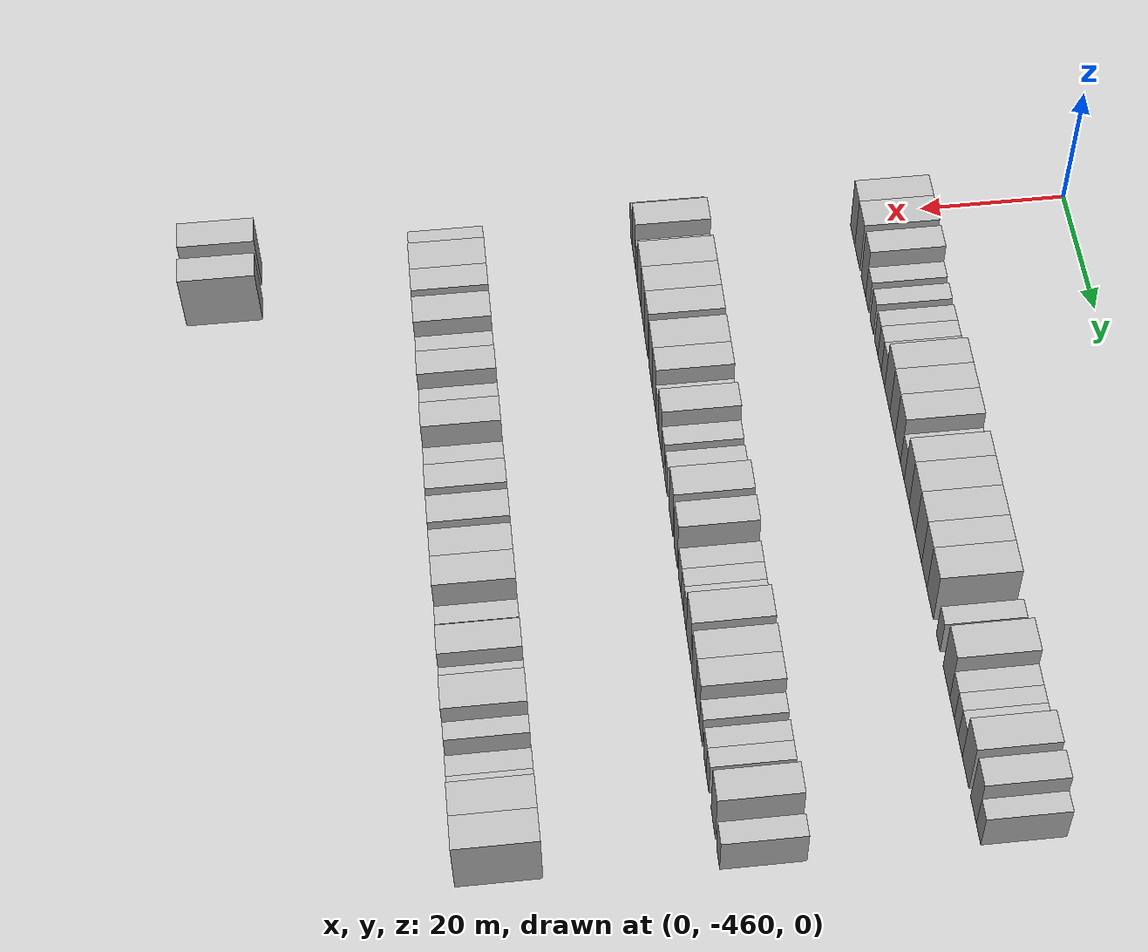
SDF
<sdf version="1.6">
 <world name="default">
  <model name="building_1">
   <static>1</static>
   <pose>25.0000 -456.1412 0 0.000000 0.000000 0.000000</pose>
   <link name="link">
    <pose>0 0 4.50 0 0 0</pose>
    <collision name="collision"><geometry><box><size>10.0000 3.7175 9.0000</size></box></geometry></collision>
    <visual name="visual">
     <cast_shadows>0</cast_shadows>
     <geometry><box><size>10.0000 3.7175 9.0000</size></box></geometry>
     <material>
      <script>
       <uri>model://HANNAS_wall/materials/scripts</uri>
       <uri>model://HANNAS_wall/materials/textures</uri>
       <name>vrc/HANNAS_wall</name>
      </script>
     </material>
    </visual>
   </link>
  </model>
  <model name="building_2">
   <static>1</static>
   <pose>25.0000 -452.1056 0 0.000000 0.000000 0.000000</pose>
   <link name="link">
    <pose>0 0 4.50 0 0 0</pose>
    <collision name="collision"><geometry><box><size>10.0000 4.3537 9.0000</size></box></geometry></collision>
    <visual name="visual">
     <cast_shadows>0</cast_shadows>
     <geometry><box><size>10.0000 4.3537 9.0000</size></box></geometry>
     <material>
      <script>
       <uri>model://HANNAS_wall/materials/scripts</uri>
       <uri>model://HANNAS_wall/materials/textures</uri>
       <name>vrc/HANNAS_wall</name>
      </script>
     </material>
    </visual>
   </link>
  </model>
  <model name="building_3">
   <static>1</static>
   <pose>25.0000 -447.1029 0 0.000000 0.000000 0.000000</pose>
   <link name="link">
    <pose>0 0 4.50 0 0 0</pose>
    <collision name="collision"><geometry><box><size>10.0000 3.6517 9.0000</size></box></geometry></collision>
    <visual name="visual">
     <cast_shadows>0</cast_shadows>
     <geometry><box><size>10.0000 3.6517 9.0000</size></box></geometry>
     <material>
      <script>
       <uri>model://HANNAS_wall/materials/scripts</uri>
       <uri>model://HANNAS_wall/materials/textures</uri>
       <name>vrc/HANNAS_wall</name>
      </script>
     </material>
    </visual>
   </link>
  </model>
  <model name="building_4">
   <static>1</static>
   <pose>25.0000 -443.9149 0 0.000000 0.000000 0.000000</pose>
   <link name="link">
    <pose>0 0 3.00 0 0 0</pose>
    <collision name="collision"><geometry><box><size>10.0000 2.7243 6.0000</size></box></geometry></collision>
    <visual name="visual">
     <cast_shadows>0</cast_shadows>
     <geometry><box><size>10.0000 2.7243 6.0000</size></box></geometry>
     <material>
      <script>
       <uri>model://HANNAS_wall/materials/scripts</uri>
       <uri>model://HANNAS_wall/materials/textures</uri>
       <name>vrc/HANNAS_wall</name>
      </script>
     </material>
    </visual>
   </link>
  </model>
  <model name="building_5">
   <static>1</static>
   <pose>25.0000 -440.1953 0 0.000000 0.000000 0.000000</pose>
   <link name="link">
    <pose>0 0 3.00 0 0 0</pose>
    <collision name="collision"><geometry><box><size>10.0000 2.7148 6.0000</size></box></geometry></collision>
    <visual name="visual">
     <cast_shadows>0</cast_shadows>
     <geometry><box><size>10.0000 2.7148 6.0000</size></box></geometry>
     <material>
      <script>
       <uri>model://HANNAS_wall/materials/scripts</uri>
       <uri>model://HANNAS_wall/materials/textures</uri>
       <name>vrc/HANNAS_wall</name>
      </script>
     </material>
    </visual>
   </link>
  </model>
  <model name="building_6">
   <static>1</static>
   <pose>25.0000 -436.5487 0 0.000000 0.000000 0.000000</pose>
   <link name="link">
    <pose>0 0 3.00 0 0 0</pose>
    <collision name="collision"><geometry><box><size>10.0000 2.5785 6.0000</size></box></geometry></collision>
    <visual name="visual">
     <cast_shadows>0</cast_shadows>
     <geometry><box><size>10.0000 2.5785 6.0000</size></box></geometry>
     <material>
      <script>
       <uri>model://HANNAS_wall/materials/scripts</uri>
       <uri>model://HANNAS_wall/materials/textures</uri>
       <name>vrc/HANNAS_wall</name>
      </script>
     </material>
    </visual>
   </link>
  </model>
  <model name="building_7">
   <static>1</static>
   <pose>25.0000 -433.9206 0 0.000000 0.000000 0.000000</pose>
   <link name="link">
    <pose>0 0 3.00 0 0 0</pose>
    <collision name="collision"><geometry><box><size>10.0000 2.6775 6.0000</size></box></geometry></collision>
    <visual name="visual">
     <cast_shadows>0</cast_shadows>
     <geometry><box><size>10.0000 2.6775 6.0000</size></box></geometry>
     <material>
      <script>
       <uri>model://HANNAS_wall/materials/scripts</uri>
       <uri>model://HANNAS_wall/materials/textures</uri>
       <name>vrc/HANNAS_wall</name>
      </script>
     </material>
    </visual>
   </link>
  </model>
  <model name="building_8">
   <static>1</static>
   <pose>25.0000 -431.2459 0 0.000000 0.000000 0.000000</pose>
   <link name="link">
    <pose>0 0 3.00 0 0 0</pose>
    <collision name="collision"><geometry><box><size>10.0000 2.6720 6.0000</size></box></geometry></collision>
    <visual name="visual">
     <cast_shadows>0</cast_shadows>
     <geometry><box><size>10.0000 2.6720 6.0000</size></box></geometry>
     <material>
      <script>
       <uri>model://HANNAS_wall/materials/scripts</uri>
       <uri>model://HANNAS_wall/materials/textures</uri>
       <name>vrc/HANNAS_wall</name>
      </script>
     </material>
    </visual>
   </link>
  </model>
  <model name="building_9">
   <static>1</static>
   <pose>25.0000 -427.8810 0 0.000000 0.000000 0.000000</pose>
   <link name="link">
    <pose>0 0 4.50 0 0 0</pose>
    <collision name="collision"><geometry><box><size>10.0000 4.0577 9.0000</size></box></geometry></collision>
    <visual name="visual">
     <cast_shadows>0</cast_shadows>
     <geometry><box><size>10.0000 4.0577 9.0000</size></box></geometry>
     <material>
      <script>
       <uri>model://HANNAS_wall/materials/scripts</uri>
       <uri>model://HANNAS_wall/materials/textures</uri>
       <name>vrc/HANNAS_wall</name>
      </script>
     </material>
    </visual>
   </link>
  </model>
  <model name="building_10">
   <static>1</static>
   <pose>25.0000 -423.8278 0 0.000000 0.000000 0.000000</pose>
   <link name="link">
    <pose>0 0 4.50 0 0 0</pose>
    <collision name="collision"><geometry><box><size>10.0000 4.0487 9.0000</size></box></geometry></collision>
    <visual name="visual">
     <cast_shadows>0</cast_shadows>
     <geometry><box><size>10.0000 4.0487 9.0000</size></box></geometry>
     <material>
      <script>
       <uri>model://HANNAS_wall/materials/scripts</uri>
       <uri>model://HANNAS_wall/materials/textures</uri>
       <name>vrc/HANNAS_wall</name>
      </script>
     </material>
    </visual>
   </link>
  </model>
  <model name="building_11">
   <static>1</static>
   <pose>25.0000 -419.7677 0 0.000000 0.000000 0.000000</pose>
   <link name="link">
    <pose>0 0 4.50 0 0 0</pose>
    <collision name="collision"><geometry><box><size>10.0000 4.0715 9.0000</size></box></geometry></collision>
    <visual name="visual">
     <cast_shadows>0</cast_shadows>
     <geometry><box><size>10.0000 4.0715 9.0000</size></box></geometry>
     <material>
      <script>
       <uri>model://HANNAS_wall/materials/scripts</uri>
       <uri>model://HANNAS_wall/materials/textures</uri>
       <name>vrc/HANNAS_wall</name>
      </script>
     </material>
    </visual>
   </link>
  </model>
  <model name="building_12">
   <static>1</static>
   <pose>25.0000 -416.3413 0 0.000000 0.000000 0.000000</pose>
   <link name="link">
    <pose>0 0 3.00 0 0 0</pose>
    <collision name="collision"><geometry><box><size>10.0000 2.7813 6.0000</size></box></geometry></collision>
    <visual name="visual">
     <cast_shadows>0</cast_shadows>
     <geometry><box><size>10.0000 2.7813 6.0000</size></box></geometry>
     <material>
      <script>
       <uri>model://HANNAS_wall/materials/scripts</uri>
       <uri>model://HANNAS_wall/materials/textures</uri>
       <name>vrc/HANNAS_wall</name>
      </script>
     </material>
    </visual>
   </link>
  </model>
  <model name="building_13">
   <static>1</static>
   <pose>25.0000 -413.0991 0 0.000000 0.000000 0.000000</pose>
   <link name="link">
    <pose>0 0 4.50 0 0 0</pose>
    <collision name="collision"><geometry><box><size>10.0000 3.7031 9.0000</size></box></geometry></collision>
    <visual name="visual">
     <cast_shadows>0</cast_shadows>
     <geometry><box><size>10.0000 3.7031 9.0000</size></box></geometry>
     <material>
      <script>
       <uri>model://HANNAS_wall/materials/scripts</uri>
       <uri>model://HANNAS_wall/materials/textures</uri>
       <name>vrc/HANNAS_wall</name>
      </script>
     </material>
    </visual>
   </link>
  </model>
  <model name="building_14">
   <static>1</static>
   <pose>25.0000 -409.0088 0 0.000000 0.000000 0.000000</pose>
   <link name="link">
    <pose>0 0 4.50 0 0 0</pose>
    <collision name="collision"><geometry><box><size>10.0000 4.4775 9.0000</size></box></geometry></collision>
    <visual name="visual">
     <cast_shadows>0</cast_shadows>
     <geometry><box><size>10.0000 4.4775 9.0000</size></box></geometry>
     <material>
      <script>
       <uri>model://HANNAS_wall/materials/scripts</uri>
       <uri>model://HANNAS_wall/materials/textures</uri>
       <name>vrc/HANNAS_wall</name>
      </script>
     </material>
    </visual>
   </link>
  </model>
  <model name="building_15">
   <static>1</static>
   <pose>25.0000 -404.5350 0 0.000000 0.000000 0.000000</pose>
   <link name="link">
    <pose>0 0 4.50 0 0 0</pose>
    <collision name="collision"><geometry><box><size>10.0000 4.4703 9.0000</size></box></geometry></collision>
    <visual name="visual">
     <cast_shadows>0</cast_shadows>
     <geometry><box><size>10.0000 4.4703 9.0000</size></box></geometry>
     <material>
      <script>
       <uri>model://HANNAS_wall/materials/scripts</uri>
       <uri>model://HANNAS_wall/materials/textures</uri>
       <name>vrc/HANNAS_wall</name>
      </script>
     </material>
    </visual>
   </link>
  </model>
  <model name="building_16">
   <static>1</static>
   <pose>25.0000 -400.4179 0 0.000000 0.000000 0.000000</pose>
   <link name="link">
    <pose>0 0 4.50 0 0 0</pose>
    <collision name="collision"><geometry><box><size>10.0000 3.7637 9.0000</size></box></geometry></collision>
    <visual name="visual">
     <cast_shadows>0</cast_shadows>
     <geometry><box><size>10.0000 3.7637 9.0000</size></box></geometry>
     <material>
      <script>
       <uri>model://HANNAS_wall/materials/scripts</uri>
       <uri>model://HANNAS_wall/materials/textures</uri>
       <name>vrc/HANNAS_wall</name>
      </script>
     </material>
    </visual>
   </link>
  </model>
  <model name="building_17">
   <static>1</static>
   <pose>25.0000 -396.3041 0 0.000000 0.000000 0.000000</pose>
   <link name="link">
    <pose>0 0 4.50 0 0 0</pose>
    <collision name="collision"><geometry><box><size>10.0000 4.4640 9.0000</size></box></geometry></collision>
    <visual name="visual">
     <cast_shadows>0</cast_shadows>
     <geometry><box><size>10.0000 4.4640 9.0000</size></box></geometry>
     <material>
      <script>
       <uri>model://HANNAS_wall/materials/scripts</uri>
       <uri>model://HANNAS_wall/materials/textures</uri>
       <name>vrc/HANNAS_wall</name>
      </script>
     </material>
    </visual>
   </link>
  </model>
  <model name="building_18">
   <static>1</static>
   <pose>25.0000 -390.7837 0 0.000000 0.000000 0.000000</pose>
   <link name="link">
    <pose>0 0 3.00 0 0 0</pose>
    <collision name="collision"><geometry><box><size>10.0000 2.5768 6.0000</size></box></geometry></collision>
    <visual name="visual">
     <cast_shadows>0</cast_shadows>
     <geometry><box><size>10.0000 2.5768 6.0000</size></box></geometry>
     <material>
      <script>
       <uri>model://HANNAS_wall/materials/scripts</uri>
       <uri>model://HANNAS_wall/materials/textures</uri>
       <name>vrc/HANNAS_wall</name>
      </script>
     </material>
    </visual>
   </link>
  </model>
  <model name="building_19">
   <static>1</static>
   <pose>25.0000 -385.2495 0 0.000000 0.000000 0.000000</pose>
   <link name="link">
    <pose>0 0 4.50 0 0 0</pose>
    <collision name="collision"><geometry><box><size>10.0000 4.4918 9.0000</size></box></geometry></collision>
    <visual name="visual">
     <cast_shadows>0</cast_shadows>
     <geometry><box><size>10.0000 4.4918 9.0000</size></box></geometry>
     <material>
      <script>
       <uri>model://HANNAS_wall/materials/scripts</uri>
       <uri>model://HANNAS_wall/materials/textures</uri>
       <name>vrc/HANNAS_wall</name>
      </script>
     </material>
    </visual>
   </link>
  </model>
  <model name="building_20">
   <static>1</static>
   <pose>25.0000 -381.5577 0 0.000000 0.000000 0.000000</pose>
   <link name="link">
    <pose>0 0 3.00 0 0 0</pose>
    <collision name="collision"><geometry><box><size>10.0000 2.8917 6.0000</size></box></geometry></collision>
    <visual name="visual">
     <cast_shadows>0</cast_shadows>
     <geometry><box><size>10.0000 2.8917 6.0000</size></box></geometry>
     <material>
      <script>
       <uri>model://HANNAS_wall/materials/scripts</uri>
       <uri>model://HANNAS_wall/materials/textures</uri>
       <name>vrc/HANNAS_wall</name>
      </script>
     </material>
    </visual>
   </link>
  </model>
  <model name="building_21">
   <static>1</static>
   <pose>25.0000 -378.9097 0 0.000000 0.000000 0.000000</pose>
   <link name="link">
    <pose>0 0 3.00 0 0 0</pose>
    <collision name="collision"><geometry><box><size>10.0000 2.4043 6.0000</size></box></geometry></collision>
    <visual name="visual">
     <cast_shadows>0</cast_shadows>
     <geometry><box><size>10.0000 2.4043 6.0000</size></box></geometry>
     <material>
      <script>
       <uri>model://HANNAS_wall/materials/scripts</uri>
       <uri>model://HANNAS_wall/materials/textures</uri>
       <name>vrc/HANNAS_wall</name>
      </script>
     </material>
    </visual>
   </link>
  </model>
  <model name="building_22">
   <static>1</static>
   <pose>25.0000 -376.3395 0 0.000000 0.000000 0.000000</pose>
   <link name="link">
    <pose>0 0 3.00 0 0 0</pose>
    <collision name="collision"><geometry><box><size>10.0000 2.7362 6.0000</size></box></geometry></collision>
    <visual name="visual">
     <cast_shadows>0</cast_shadows>
     <geometry><box><size>10.0000 2.7362 6.0000</size></box></geometry>
     <material>
      <script>
       <uri>model://HANNAS_wall/materials/scripts</uri>
       <uri>model://HANNAS_wall/materials/textures</uri>
       <name>vrc/HANNAS_wall</name>
      </script>
     </material>
    </visual>
   </link>
  </model>
  <model name="building_23">
   <static>1</static>
   <pose>25.0000 -372.8652 0 0.000000 0.000000 0.000000</pose>
   <link name="link">
    <pose>0 0 4.50 0 0 0</pose>
    <collision name="collision"><geometry><box><size>10.0000 4.2125 9.0000</size></box></geometry></collision>
    <visual name="visual">
     <cast_shadows>0</cast_shadows>
     <geometry><box><size>10.0000 4.2125 9.0000</size></box></geometry>
     <material>
      <script>
       <uri>model://HANNAS_wall/materials/scripts</uri>
       <uri>model://HANNAS_wall/materials/textures</uri>
       <name>vrc/HANNAS_wall</name>
      </script>
     </material>
    </visual>
   </link>
  </model>
  <model name="building_24">
   <static>1</static>
   <pose>25.0000 -367.9581 0 0.000000 0.000000 0.000000</pose>
   <link name="link">
    <pose>0 0 4.50 0 0 0</pose>
    <collision name="collision"><geometry><box><size>10.0000 3.6017 9.0000</size></box></geometry></collision>
    <visual name="visual">
     <cast_shadows>0</cast_shadows>
     <geometry><box><size>10.0000 3.6017 9.0000</size></box></geometry>
     <material>
      <script>
       <uri>model://HANNAS_wall/materials/scripts</uri>
       <uri>model://HANNAS_wall/materials/textures</uri>
       <name>vrc/HANNAS_wall</name>
      </script>
     </material>
    </visual>
   </link>
  </model>
  <model name="building_25">
   <static>1</static>
   <pose>25.0000 -364.8234 0 0.000000 0.000000 0.000000</pose>
   <link name="link">
    <pose>0 0 3.00 0 0 0</pose>
    <collision name="collision"><geometry><box><size>10.0000 2.6679 6.0000</size></box></geometry></collision>
    <visual name="visual">
     <cast_shadows>0</cast_shadows>
     <geometry><box><size>10.0000 2.6679 6.0000</size></box></geometry>
     <material>
      <script>
       <uri>model://HANNAS_wall/materials/scripts</uri>
       <uri>model://HANNAS_wall/materials/textures</uri>
       <name>vrc/HANNAS_wall</name>
      </script>
     </material>
    </visual>
   </link>
  </model>
  <model name="building_231">
   <static>1</static>
   <pose>55.0000 -458.5905 0 0.000000 0.000000 0.000000</pose>
   <link name="link">
    <pose>0 0 3.00 0 0 0</pose>
    <collision name="collision"><geometry><box><size>10.0000 2.8190 6.0000</size></box></geometry></collision>
    <visual name="visual">
     <cast_shadows>0</cast_shadows>
     <geometry><box><size>10.0000 2.8190 6.0000</size></box></geometry>
     <material>
      <script>
       <uri>model://HANNAS_wall/materials/scripts</uri>
       <uri>model://HANNAS_wall/materials/textures</uri>
       <name>vrc/HANNAS_wall</name>
      </script>
     </material>
    </visual>
   </link>
  </model>
  <model name="building_232">
   <static>1</static>
   <pose>55.0000 -455.2562 0 0.000000 0.000000 0.000000</pose>
   <link name="link">
    <pose>0 0 4.50 0 0 0</pose>
    <collision name="collision"><geometry><box><size>10.0000 3.8497 9.0000</size></box></geometry></collision>
    <visual name="visual">
     <cast_shadows>0</cast_shadows>
     <geometry><box><size>10.0000 3.8497 9.0000</size></box></geometry>
     <material>
      <script>
       <uri>model://HANNAS_wall/materials/scripts</uri>
       <uri>model://HANNAS_wall/materials/textures</uri>
       <name>vrc/HANNAS_wall</name>
      </script>
     </material>
    </visual>
   </link>
  </model>
  <model name="building_233">
   <static>1</static>
   <pose>55.0000 -451.8978 0 0.000000 0.000000 0.000000</pose>
   <link name="link">
    <pose>0 0 3.00 0 0 0</pose>
    <collision name="collision"><geometry><box><size>10.0000 2.8672 6.0000</size></box></geometry></collision>
    <visual name="visual">
     <cast_shadows>0</cast_shadows>
     <geometry><box><size>10.0000 2.8672 6.0000</size></box></geometry>
     <material>
      <script>
       <uri>model://HANNAS_wall/materials/scripts</uri>
       <uri>model://HANNAS_wall/materials/textures</uri>
       <name>vrc/HANNAS_wall</name>
      </script>
     </material>
    </visual>
   </link>
  </model>
  <model name="building_234">
   <static>1</static>
   <pose>55.0000 -448.2788 0 0.000000 0.000000 0.000000</pose>
   <link name="link">
    <pose>0 0 4.50 0 0 0</pose>
    <collision name="collision"><geometry><box><size>10.0000 4.3707 9.0000</size></box></geometry></collision>
    <visual name="visual">
     <cast_shadows>0</cast_shadows>
     <geometry><box><size>10.0000 4.3707 9.0000</size></box></geometry>
     <material>
      <script>
       <uri>model://HANNAS_wall/materials/scripts</uri>
       <uri>model://HANNAS_wall/materials/textures</uri>
       <name>vrc/HANNAS_wall</name>
      </script>
     </material>
    </visual>
   </link>
  </model>
  <model name="building_235">
   <static>1</static>
   <pose>55.0000 -444.0166 0 0.000000 0.000000 0.000000</pose>
   <link name="link">
    <pose>0 0 4.50 0 0 0</pose>
    <collision name="collision"><geometry><box><size>10.0000 4.1537 9.0000</size></box></geometry></collision>
    <visual name="visual">
     <cast_shadows>0</cast_shadows>
     <geometry><box><size>10.0000 4.1537 9.0000</size></box></geometry>
     <material>
      <script>
       <uri>model://HANNAS_wall/materials/scripts</uri>
       <uri>model://HANNAS_wall/materials/textures</uri>
       <name>vrc/HANNAS_wall</name>
      </script>
     </material>
    </visual>
   </link>
  </model>
  <model name="building_236">
   <static>1</static>
   <pose>55.0000 -439.9630 0 0.000000 0.000000 0.000000</pose>
   <link name="link">
    <pose>0 0 4.50 0 0 0</pose>
    <collision name="collision"><geometry><box><size>10.0000 3.9536 9.0000</size></box></geometry></collision>
    <visual name="visual">
     <cast_shadows>0</cast_shadows>
     <geometry><box><size>10.0000 3.9536 9.0000</size></box></geometry>
     <material>
      <script>
       <uri>model://HANNAS_wall/materials/scripts</uri>
       <uri>model://HANNAS_wall/materials/textures</uri>
       <name>vrc/HANNAS_wall</name>
      </script>
     </material>
    </visual>
   </link>
  </model>
  <model name="building_237">
   <static>1</static>
   <pose>55.0000 -434.7425 0 0.000000 0.000000 0.000000</pose>
   <link name="link">
    <pose>0 0 4.50 0 0 0</pose>
    <collision name="collision"><geometry><box><size>10.0000 4.4873 9.0000</size></box></geometry></collision>
    <visual name="visual">
     <cast_shadows>0</cast_shadows>
     <geometry><box><size>10.0000 4.4873 9.0000</size></box></geometry>
     <material>
      <script>
       <uri>model://HANNAS_wall/materials/scripts</uri>
       <uri>model://HANNAS_wall/materials/textures</uri>
       <name>vrc/HANNAS_wall</name>
      </script>
     </material>
    </visual>
   </link>
  </model>
  <model name="building_238">
   <static>1</static>
   <pose>55.0000 -430.6491 0 0.000000 0.000000 0.000000</pose>
   <link name="link">
    <pose>0 0 4.50 0 0 0</pose>
    <collision name="collision"><geometry><box><size>10.0000 3.6995 9.0000</size></box></geometry></collision>
    <visual name="visual">
     <cast_shadows>0</cast_shadows>
     <geometry><box><size>10.0000 3.6995 9.0000</size></box></geometry>
     <material>
      <script>
       <uri>model://HANNAS_wall/materials/scripts</uri>
       <uri>model://HANNAS_wall/materials/textures</uri>
       <name>vrc/HANNAS_wall</name>
      </script>
     </material>
    </visual>
   </link>
  </model>
  <model name="building_239">
   <static>1</static>
   <pose>55.0000 -427.3401 0 0.000000 0.000000 0.000000</pose>
   <link name="link">
    <pose>0 0 3.00 0 0 0</pose>
    <collision name="collision"><geometry><box><size>10.0000 2.9185 6.0000</size></box></geometry></collision>
    <visual name="visual">
     <cast_shadows>0</cast_shadows>
     <geometry><box><size>10.0000 2.9185 6.0000</size></box></geometry>
     <material>
      <script>
       <uri>model://HANNAS_wall/materials/scripts</uri>
       <uri>model://HANNAS_wall/materials/textures</uri>
       <name>vrc/HANNAS_wall</name>
      </script>
     </material>
    </visual>
   </link>
  </model>
  <model name="building_240">
   <static>1</static>
   <pose>55.0000 -424.0318 0 0.000000 0.000000 0.000000</pose>
   <link name="link">
    <pose>0 0 4.50 0 0 0</pose>
    <collision name="collision"><geometry><box><size>10.0000 3.6981 9.0000</size></box></geometry></collision>
    <visual name="visual">
     <cast_shadows>0</cast_shadows>
     <geometry><box><size>10.0000 3.6981 9.0000</size></box></geometry>
     <material>
      <script>
       <uri>model://HANNAS_wall/materials/scripts</uri>
       <uri>model://HANNAS_wall/materials/textures</uri>
       <name>vrc/HANNAS_wall</name>
      </script>
     </material>
    </visual>
   </link>
  </model>
  <model name="building_241">
   <static>1</static>
   <pose>55.0000 -420.7394 0 0.000000 0.000000 0.000000</pose>
   <link name="link">
    <pose>0 0 3.00 0 0 0</pose>
    <collision name="collision"><geometry><box><size>10.0000 2.8867 6.0000</size></box></geometry></collision>
    <visual name="visual">
     <cast_shadows>0</cast_shadows>
     <geometry><box><size>10.0000 2.8867 6.0000</size></box></geometry>
     <material>
      <script>
       <uri>model://HANNAS_wall/materials/scripts</uri>
       <uri>model://HANNAS_wall/materials/textures</uri>
       <name>vrc/HANNAS_wall</name>
      </script>
     </material>
    </visual>
   </link>
  </model>
  <model name="building_242">
   <static>1</static>
   <pose>55.0000 -417.0213 0 0.000000 0.000000 0.000000</pose>
   <link name="link">
    <pose>0 0 3.00 0 0 0</pose>
    <collision name="collision"><geometry><box><size>10.0000 2.5495 6.0000</size></box></geometry></collision>
    <visual name="visual">
     <cast_shadows>0</cast_shadows>
     <geometry><box><size>10.0000 2.5495 6.0000</size></box></geometry>
     <material>
      <script>
       <uri>model://HANNAS_wall/materials/scripts</uri>
       <uri>model://HANNAS_wall/materials/textures</uri>
       <name>vrc/HANNAS_wall</name>
      </script>
     </material>
    </visual>
   </link>
  </model>
  <model name="building_243">
   <static>1</static>
   <pose>55.0000 -411.6289 0 0.000000 0.000000 0.000000</pose>
   <link name="link">
    <pose>0 0 4.50 0 0 0</pose>
    <collision name="collision"><geometry><box><size>10.0000 4.2352 9.0000</size></box></geometry></collision>
    <visual name="visual">
     <cast_shadows>0</cast_shadows>
     <geometry><box><size>10.0000 4.2352 9.0000</size></box></geometry>
     <material>
      <script>
       <uri>model://HANNAS_wall/materials/scripts</uri>
       <uri>model://HANNAS_wall/materials/textures</uri>
       <name>vrc/HANNAS_wall</name>
      </script>
     </material>
    </visual>
   </link>
  </model>
  <model name="building_244">
   <static>1</static>
   <pose>55.0000 -406.6191 0 0.000000 0.000000 0.000000</pose>
   <link name="link">
    <pose>0 0 4.50 0 0 0</pose>
    <collision name="collision"><geometry><box><size>10.0000 3.7844 9.0000</size></box></geometry></collision>
    <visual name="visual">
     <cast_shadows>0</cast_shadows>
     <geometry><box><size>10.0000 3.7844 9.0000</size></box></geometry>
     <material>
      <script>
       <uri>model://HANNAS_wall/materials/scripts</uri>
       <uri>model://HANNAS_wall/materials/textures</uri>
       <name>vrc/HANNAS_wall</name>
      </script>
     </material>
    </visual>
   </link>
  </model>
  <model name="building_245">
   <static>1</static>
   <pose>55.0000 -402.2301 0 0.000000 0.000000 0.000000</pose>
   <link name="link">
    <pose>0 0 3.00 0 0 0</pose>
    <collision name="collision"><geometry><box><size>10.0000 2.9936 6.0000</size></box></geometry></collision>
    <visual name="visual">
     <cast_shadows>0</cast_shadows>
     <geometry><box><size>10.0000 2.9936 6.0000</size></box></geometry>
     <material>
      <script>
       <uri>model://HANNAS_wall/materials/scripts</uri>
       <uri>model://HANNAS_wall/materials/textures</uri>
       <name>vrc/HANNAS_wall</name>
      </script>
     </material>
    </visual>
   </link>
  </model>
  <model name="building_246">
   <static>1</static>
   <pose>55.0000 -399.4546 0 0.000000 0.000000 0.000000</pose>
   <link name="link">
    <pose>0 0 3.00 0 0 0</pose>
    <collision name="collision"><geometry><box><size>10.0000 2.5574 6.0000</size></box></geometry></collision>
    <visual name="visual">
     <cast_shadows>0</cast_shadows>
     <geometry><box><size>10.0000 2.5574 6.0000</size></box></geometry>
     <material>
      <script>
       <uri>model://HANNAS_wall/materials/scripts</uri>
       <uri>model://HANNAS_wall/materials/textures</uri>
       <name>vrc/HANNAS_wall</name>
      </script>
     </material>
    </visual>
   </link>
  </model>
  <model name="building_247">
   <static>1</static>
   <pose>55.0000 -396.7835 0 0.000000 0.000000 0.000000</pose>
   <link name="link">
    <pose>0 0 3.00 0 0 0</pose>
    <collision name="collision"><geometry><box><size>10.0000 2.7848 6.0000</size></box></geometry></collision>
    <visual name="visual">
     <cast_shadows>0</cast_shadows>
     <geometry><box><size>10.0000 2.7848 6.0000</size></box></geometry>
     <material>
      <script>
       <uri>model://HANNAS_wall/materials/scripts</uri>
       <uri>model://HANNAS_wall/materials/textures</uri>
       <name>vrc/HANNAS_wall</name>
      </script>
     </material>
    </visual>
   </link>
  </model>
  <model name="building_248">
   <static>1</static>
   <pose>55.0000 -393.1993 0 0.000000 0.000000 0.000000</pose>
   <link name="link">
    <pose>0 0 4.50 0 0 0</pose>
    <collision name="collision"><geometry><box><size>10.0000 4.3835 9.0000</size></box></geometry></collision>
    <visual name="visual">
     <cast_shadows>0</cast_shadows>
     <geometry><box><size>10.0000 4.3835 9.0000</size></box></geometry>
     <material>
      <script>
       <uri>model://HANNAS_wall/materials/scripts</uri>
       <uri>model://HANNAS_wall/materials/textures</uri>
       <name>vrc/HANNAS_wall</name>
      </script>
     </material>
    </visual>
   </link>
  </model>
  <model name="building_249">
   <static>1</static>
   <pose>55.0000 -388.0685 0 0.000000 0.000000 0.000000</pose>
   <link name="link">
    <pose>0 0 4.50 0 0 0</pose>
    <collision name="collision"><geometry><box><size>10.0000 3.8781 9.0000</size></box></geometry></collision>
    <visual name="visual">
     <cast_shadows>0</cast_shadows>
     <geometry><box><size>10.0000 3.8781 9.0000</size></box></geometry>
     <material>
      <script>
       <uri>model://HANNAS_wall/materials/scripts</uri>
       <uri>model://HANNAS_wall/materials/textures</uri>
       <name>vrc/HANNAS_wall</name>
      </script>
     </material>
    </visual>
   </link>
  </model>
  <model name="building_250">
   <static>1</static>
   <pose>55.0000 -384.2683 0 0.000000 0.000000 0.000000</pose>
   <link name="link">
    <pose>0 0 4.50 0 0 0</pose>
    <collision name="collision"><geometry><box><size>10.0000 3.7224 9.0000</size></box></geometry></collision>
    <visual name="visual">
     <cast_shadows>0</cast_shadows>
     <geometry><box><size>10.0000 3.7224 9.0000</size></box></geometry>
     <material>
      <script>
       <uri>model://HANNAS_wall/materials/scripts</uri>
       <uri>model://HANNAS_wall/materials/textures</uri>
       <name>vrc/HANNAS_wall</name>
      </script>
     </material>
    </visual>
   </link>
  </model>
  <model name="building_251">
   <static>1</static>
   <pose>55.0000 -381.0393 0 0.000000 0.000000 0.000000</pose>
   <link name="link">
    <pose>0 0 3.00 0 0 0</pose>
    <collision name="collision"><geometry><box><size>10.0000 2.7356 6.0000</size></box></geometry></collision>
    <visual name="visual">
     <cast_shadows>0</cast_shadows>
     <geometry><box><size>10.0000 2.7356 6.0000</size></box></geometry>
     <material>
      <script>
       <uri>model://HANNAS_wall/materials/scripts</uri>
       <uri>model://HANNAS_wall/materials/textures</uri>
       <name>vrc/HANNAS_wall</name>
      </script>
     </material>
    </visual>
   </link>
  </model>
  <model name="building_252">
   <static>1</static>
   <pose>55.0000 -377.3305 0 0.000000 0.000000 0.000000</pose>
   <link name="link">
    <pose>0 0 3.00 0 0 0</pose>
    <collision name="collision"><geometry><box><size>10.0000 2.6821 6.0000</size></box></geometry></collision>
    <visual name="visual">
     <cast_shadows>0</cast_shadows>
     <geometry><box><size>10.0000 2.6821 6.0000</size></box></geometry>
     <material>
      <script>
       <uri>model://HANNAS_wall/materials/scripts</uri>
       <uri>model://HANNAS_wall/materials/textures</uri>
       <name>vrc/HANNAS_wall</name>
      </script>
     </material>
    </visual>
   </link>
  </model>
  <model name="building_253">
   <static>1</static>
   <pose>55.0000 -374.7233 0 0.000000 0.000000 0.000000</pose>
   <link name="link">
    <pose>0 0 3.00 0 0 0</pose>
    <collision name="collision"><geometry><box><size>10.0000 2.5322 6.0000</size></box></geometry></collision>
    <visual name="visual">
     <cast_shadows>0</cast_shadows>
     <geometry><box><size>10.0000 2.5322 6.0000</size></box></geometry>
     <material>
      <script>
       <uri>model://HANNAS_wall/materials/scripts</uri>
       <uri>model://HANNAS_wall/materials/textures</uri>
       <name>vrc/HANNAS_wall</name>
      </script>
     </material>
    </visual>
   </link>
  </model>
  <model name="building_254">
   <static>1</static>
   <pose>55.0000 -369.4746 0 0.000000 0.000000 0.000000</pose>
   <link name="link">
    <pose>0 0 4.50 0 0 0</pose>
    <collision name="collision"><geometry><box><size>10.0000 3.9654 9.0000</size></box></geometry></collision>
    <visual name="visual">
     <cast_shadows>0</cast_shadows>
     <geometry><box><size>10.0000 3.9654 9.0000</size></box></geometry>
     <material>
      <script>
       <uri>model://HANNAS_wall/materials/scripts</uri>
       <uri>model://HANNAS_wall/materials/textures</uri>
       <name>vrc/HANNAS_wall</name>
      </script>
     </material>
    </visual>
   </link>
  </model>
  <model name="building_255">
   <static>1</static>
   <pose>55.0000 -365.0614 0 0.000000 0.000000 0.000000</pose>
   <link name="link">
    <pose>0 0 3.00 0 0 0</pose>
    <collision name="collision"><geometry><box><size>10.0000 2.8608 6.0000</size></box></geometry></collision>
    <visual name="visual">
     <cast_shadows>0</cast_shadows>
     <geometry><box><size>10.0000 2.8608 6.0000</size></box></geometry>
     <material>
      <script>
       <uri>model://HANNAS_wall/materials/scripts</uri>
       <uri>model://HANNAS_wall/materials/textures</uri>
       <name>vrc/HANNAS_wall</name>
      </script>
     </material>
    </visual>
   </link>
  </model>
  <model name="building_477">
   <static>1</static>
   <pose>85.0000 -456.6878 0 0.000000 0.000000 0.000000</pose>
   <link name="link">
    <pose>0 0 3.00 0 0 0</pose>
    <collision name="collision"><geometry><box><size>10.0000 2.6245 6.0000</size></box></geometry></collision>
    <visual name="visual">
     <cast_shadows>0</cast_shadows>
     <geometry><box><size>10.0000 2.6245 6.0000</size></box></geometry>
     <material>
      <script>
       <uri>model://HANNAS_wall/materials/scripts</uri>
       <uri>model://HANNAS_wall/materials/textures</uri>
       <name>vrc/HANNAS_wall</name>
      </script>
     </material>
    </visual>
   </link>
  </model>
  <model name="building_478">
   <static>1</static>
   <pose>85.0000 -451.1293 0 0.000000 0.000000 0.000000</pose>
   <link name="link">
    <pose>0 0 4.50 0 0 0</pose>
    <collision name="collision"><geometry><box><size>10.0000 4.4924 9.0000</size></box></geometry></collision>
    <visual name="visual">
     <cast_shadows>0</cast_shadows>
     <geometry><box><size>10.0000 4.4924 9.0000</size></box></geometry>
     <material>
      <script>
       <uri>model://HANNAS_wall/materials/scripts</uri>
       <uri>model://HANNAS_wall/materials/textures</uri>
       <name>vrc/HANNAS_wall</name>
      </script>
     </material>
    </visual>
   </link>
  </model>
  <model name="building_479">
   <static>1</static>
   <pose>85.0000 -447.0557 0 0.000000 0.000000 0.000000</pose>
   <link name="link">
    <pose>0 0 4.50 0 0 0</pose>
    <collision name="collision"><geometry><box><size>10.0000 3.6548 9.0000</size></box></geometry></collision>
    <visual name="visual">
     <cast_shadows>0</cast_shadows>
     <geometry><box><size>10.0000 3.6548 9.0000</size></box></geometry>
     <material>
      <script>
       <uri>model://HANNAS_wall/materials/scripts</uri>
       <uri>model://HANNAS_wall/materials/textures</uri>
       <name>vrc/HANNAS_wall</name>
      </script>
     </material>
    </visual>
   </link>
  </model>
  <model name="building_480">
   <static>1</static>
   <pose>85.0000 -442.0933 0 0.000000 0.000000 0.000000</pose>
   <link name="link">
    <pose>0 0 4.50 0 0 0</pose>
    <collision name="collision"><geometry><box><size>10.0000 4.2700 9.0000</size></box></geometry></collision>
    <visual name="visual">
     <cast_shadows>0</cast_shadows>
     <geometry><box><size>10.0000 4.2700 9.0000</size></box></geometry>
     <material>
      <script>
       <uri>model://HANNAS_wall/materials/scripts</uri>
       <uri>model://HANNAS_wall/materials/textures</uri>
       <name>vrc/HANNAS_wall</name>
      </script>
     </material>
    </visual>
   </link>
  </model>
  <model name="building_481">
   <static>1</static>
   <pose>85.0000 -438.5580 0 0.000000 0.000000 0.000000</pose>
   <link name="link">
    <pose>0 0 3.00 0 0 0</pose>
    <collision name="collision"><geometry><box><size>10.0000 2.8007 6.0000</size></box></geometry></collision>
    <visual name="visual">
     <cast_shadows>0</cast_shadows>
     <geometry><box><size>10.0000 2.8007 6.0000</size></box></geometry>
     <material>
      <script>
       <uri>model://HANNAS_wall/materials/scripts</uri>
       <uri>model://HANNAS_wall/materials/textures</uri>
       <name>vrc/HANNAS_wall</name>
      </script>
     </material>
    </visual>
   </link>
  </model>
  <model name="building_482">
   <static>1</static>
   <pose>85.0000 -433.2920 0 0.000000 0.000000 0.000000</pose>
   <link name="link">
    <pose>0 0 4.50 0 0 0</pose>
    <collision name="collision"><geometry><box><size>10.0000 3.7314 9.0000</size></box></geometry></collision>
    <visual name="visual">
     <cast_shadows>0</cast_shadows>
     <geometry><box><size>10.0000 3.7314 9.0000</size></box></geometry>
     <material>
      <script>
       <uri>model://HANNAS_wall/materials/scripts</uri>
       <uri>model://HANNAS_wall/materials/textures</uri>
       <name>vrc/HANNAS_wall</name>
      </script>
     </material>
    </visual>
   </link>
  </model>
  <model name="building_483">
   <static>1</static>
   <pose>85.0000 -430.2003 0 0.000000 0.000000 0.000000</pose>
   <link name="link">
    <pose>0 0 3.00 0 0 0</pose>
    <collision name="collision"><geometry><box><size>10.0000 2.4519 6.0000</size></box></geometry></collision>
    <visual name="visual">
     <cast_shadows>0</cast_shadows>
     <geometry><box><size>10.0000 2.4519 6.0000</size></box></geometry>
     <material>
      <script>
       <uri>model://HANNAS_wall/materials/scripts</uri>
       <uri>model://HANNAS_wall/materials/textures</uri>
       <name>vrc/HANNAS_wall</name>
      </script>
     </material>
    </visual>
   </link>
  </model>
  <model name="building_484">
   <static>1</static>
   <pose>85.0000 -425.0531 0 0.000000 0.000000 0.000000</pose>
   <link name="link">
    <pose>0 0 4.50 0 0 0</pose>
    <collision name="collision"><geometry><box><size>10.0000 3.8425 9.0000</size></box></geometry></collision>
    <visual name="visual">
     <cast_shadows>0</cast_shadows>
     <geometry><box><size>10.0000 3.8425 9.0000</size></box></geometry>
     <material>
      <script>
       <uri>model://HANNAS_wall/materials/scripts</uri>
       <uri>model://HANNAS_wall/materials/textures</uri>
       <name>vrc/HANNAS_wall</name>
      </script>
     </material>
    </visual>
   </link>
  </model>
  <model name="building_485">
   <static>1</static>
   <pose>85.0000 -420.7270 0 0.000000 0.000000 0.000000</pose>
   <link name="link">
    <pose>0 0 3.00 0 0 0</pose>
    <collision name="collision"><geometry><box><size>10.0000 2.8096 6.0000</size></box></geometry></collision>
    <visual name="visual">
     <cast_shadows>0</cast_shadows>
     <geometry><box><size>10.0000 2.8096 6.0000</size></box></geometry>
     <material>
      <script>
       <uri>model://HANNAS_wall/materials/scripts</uri>
       <uri>model://HANNAS_wall/materials/textures</uri>
       <name>vrc/HANNAS_wall</name>
      </script>
     </material>
    </visual>
   </link>
  </model>
  <model name="building_486">
   <static>1</static>
   <pose>85.0000 -415.4917 0 0.000000 0.000000 0.000000</pose>
   <link name="link">
    <pose>0 0 4.50 0 0 0</pose>
    <collision name="collision"><geometry><box><size>10.0000 3.6612 9.0000</size></box></geometry></collision>
    <visual name="visual">
     <cast_shadows>0</cast_shadows>
     <geometry><box><size>10.0000 3.6612 9.0000</size></box></geometry>
     <material>
      <script>
       <uri>model://HANNAS_wall/materials/scripts</uri>
       <uri>model://HANNAS_wall/materials/textures</uri>
       <name>vrc/HANNAS_wall</name>
      </script>
     </material>
    </visual>
   </link>
  </model>
  <model name="building_487">
   <static>1</static>
   <pose>85.0000 -410.6613 0 0.000000 0.000000 0.000000</pose>
   <link name="link">
    <pose>0 0 4.50 0 0 0</pose>
    <collision name="collision"><geometry><box><size>10.0000 3.9996 9.0000</size></box></geometry></collision>
    <visual name="visual">
     <cast_shadows>0</cast_shadows>
     <geometry><box><size>10.0000 3.9996 9.0000</size></box></geometry>
     <material>
      <script>
       <uri>model://HANNAS_wall/materials/scripts</uri>
       <uri>model://HANNAS_wall/materials/textures</uri>
       <name>vrc/HANNAS_wall</name>
      </script>
     </material>
    </visual>
   </link>
  </model>
  <model name="building_488">
   <static>1</static>
   <pose>85.0000 -405.7128 0 0.000000 0.000000 0.000000</pose>
   <link name="link">
    <pose>0 0 4.50 0 0 0</pose>
    <collision name="collision"><geometry><box><size>10.0000 3.8973 9.0000</size></box></geometry></collision>
    <visual name="visual">
     <cast_shadows>0</cast_shadows>
     <geometry><box><size>10.0000 3.8973 9.0000</size></box></geometry>
     <material>
      <script>
       <uri>model://HANNAS_wall/materials/scripts</uri>
       <uri>model://HANNAS_wall/materials/textures</uri>
       <name>vrc/HANNAS_wall</name>
      </script>
     </material>
    </visual>
   </link>
  </model>
  <model name="building_489">
   <static>1</static>
   <pose>85.0000 -401.6734 0 0.000000 0.000000 0.000000</pose>
   <link name="link">
    <pose>0 0 4.50 0 0 0</pose>
    <collision name="collision"><geometry><box><size>10.0000 4.1814 9.0000</size></box></geometry></collision>
    <visual name="visual">
     <cast_shadows>0</cast_shadows>
     <geometry><box><size>10.0000 4.1814 9.0000</size></box></geometry>
     <material>
      <script>
       <uri>model://HANNAS_wall/materials/scripts</uri>
       <uri>model://HANNAS_wall/materials/textures</uri>
       <name>vrc/HANNAS_wall</name>
      </script>
     </material>
    </visual>
   </link>
  </model>
  <model name="building_490">
   <static>1</static>
   <pose>85.0000 -397.2975 0 0.000000 0.000000 0.000000</pose>
   <link name="link">
    <pose>0 0 3.00 0 0 0</pose>
    <collision name="collision"><geometry><box><size>10.0000 2.5705 6.0000</size></box></geometry></collision>
    <visual name="visual">
     <cast_shadows>0</cast_shadows>
     <geometry><box><size>10.0000 2.5705 6.0000</size></box></geometry>
     <material>
      <script>
       <uri>model://HANNAS_wall/materials/scripts</uri>
       <uri>model://HANNAS_wall/materials/textures</uri>
       <name>vrc/HANNAS_wall</name>
      </script>
     </material>
    </visual>
   </link>
  </model>
  <model name="building_491">
   <static>1</static>
   <pose>85.0000 -392.0205 0 0.000000 0.000000 0.000000</pose>
   <link name="link">
    <pose>0 0 4.50 0 0 0</pose>
    <collision name="collision"><geometry><box><size>10.0000 3.9833 9.0000</size></box></geometry></collision>
    <visual name="visual">
     <cast_shadows>0</cast_shadows>
     <geometry><box><size>10.0000 3.9833 9.0000</size></box></geometry>
     <material>
      <script>
       <uri>model://HANNAS_wall/materials/scripts</uri>
       <uri>model://HANNAS_wall/materials/textures</uri>
       <name>vrc/HANNAS_wall</name>
      </script>
     </material>
    </visual>
   </link>
  </model>
  <model name="building_492">
   <static>1</static>
   <pose>85.0000 -388.5826 0 0.000000 0.000000 0.000000</pose>
   <link name="link">
    <pose>0 0 3.00 0 0 0</pose>
    <collision name="collision"><geometry><box><size>10.0000 2.8926 6.0000</size></box></geometry></collision>
    <visual name="visual">
     <cast_shadows>0</cast_shadows>
     <geometry><box><size>10.0000 2.8926 6.0000</size></box></geometry>
     <material>
      <script>
       <uri>model://HANNAS_wall/materials/scripts</uri>
       <uri>model://HANNAS_wall/materials/textures</uri>
       <name>vrc/HANNAS_wall</name>
      </script>
     </material>
    </visual>
   </link>
  </model>
  <model name="building_493">
   <static>1</static>
   <pose>85.0000 -384.8968 0 0.000000 0.000000 0.000000</pose>
   <link name="link">
    <pose>0 0 4.50 0 0 0</pose>
    <collision name="collision"><geometry><box><size>10.0000 4.4789 9.0000</size></box></geometry></collision>
    <visual name="visual">
     <cast_shadows>0</cast_shadows>
     <geometry><box><size>10.0000 4.4789 9.0000</size></box></geometry>
     <material>
      <script>
       <uri>model://HANNAS_wall/materials/scripts</uri>
       <uri>model://HANNAS_wall/materials/textures</uri>
       <name>vrc/HANNAS_wall</name>
      </script>
     </material>
    </visual>
   </link>
  </model>
  <model name="building_494">
   <static>1</static>
   <pose>85.0000 -381.4458 0 0.000000 0.000000 0.000000</pose>
   <link name="link">
    <pose>0 0 3.00 0 0 0</pose>
    <collision name="collision"><geometry><box><size>10.0000 2.4231 6.0000</size></box></geometry></collision>
    <visual name="visual">
     <cast_shadows>0</cast_shadows>
     <geometry><box><size>10.0000 2.4231 6.0000</size></box></geometry>
     <material>
      <script>
       <uri>model://HANNAS_wall/materials/scripts</uri>
       <uri>model://HANNAS_wall/materials/textures</uri>
       <name>vrc/HANNAS_wall</name>
      </script>
     </material>
    </visual>
   </link>
  </model>
  <model name="building_495">
   <static>1</static>
   <pose>85.0000 -376.8888 0 0.000000 0.000000 0.000000</pose>
   <link name="link">
    <pose>0 0 3.00 0 0 0</pose>
    <collision name="collision"><geometry><box><size>10.0000 2.6908 6.0000</size></box></geometry></collision>
    <visual name="visual">
     <cast_shadows>0</cast_shadows>
     <geometry><box><size>10.0000 2.6908 6.0000</size></box></geometry>
     <material>
      <script>
       <uri>model://HANNAS_wall/materials/scripts</uri>
       <uri>model://HANNAS_wall/materials/textures</uri>
       <name>vrc/HANNAS_wall</name>
      </script>
     </material>
    </visual>
   </link>
  </model>
  <model name="building_496">
   <static>1</static>
   <pose>85.0000 -374.3413 0 0.000000 0.000000 0.000000</pose>
   <link name="link">
    <pose>0 0 3.00 0 0 0</pose>
    <collision name="collision"><geometry><box><size>10.0000 2.4043 6.0000</size></box></geometry></collision>
    <visual name="visual">
     <cast_shadows>0</cast_shadows>
     <geometry><box><size>10.0000 2.4043 6.0000</size></box></geometry>
     <material>
      <script>
       <uri>model://HANNAS_wall/materials/scripts</uri>
       <uri>model://HANNAS_wall/materials/textures</uri>
       <name>vrc/HANNAS_wall</name>
      </script>
     </material>
    </visual>
   </link>
  </model>
  <model name="building_497">
   <static>1</static>
   <pose>85.0000 -371.0132 0 0.000000 0.000000 0.000000</pose>
   <link name="link">
    <pose>0 0 4.50 0 0 0</pose>
    <collision name="collision"><geometry><box><size>10.0000 4.2519 9.0000</size></box></geometry></collision>
    <visual name="visual">
     <cast_shadows>0</cast_shadows>
     <geometry><box><size>10.0000 4.2519 9.0000</size></box></geometry>
     <material>
      <script>
       <uri>model://HANNAS_wall/materials/scripts</uri>
       <uri>model://HANNAS_wall/materials/textures</uri>
       <name>vrc/HANNAS_wall</name>
      </script>
     </material>
    </visual>
   </link>
  </model>
  <model name="building_498">
   <static>1</static>
   <pose>85.0000 -366.7723 0 0.000000 0.000000 0.000000</pose>
   <link name="link">
    <pose>0 0 4.50 0 0 0</pose>
    <collision name="collision"><geometry><box><size>10.0000 4.2299 9.0000</size></box></geometry></collision>
    <visual name="visual">
     <cast_shadows>0</cast_shadows>
     <geometry><box><size>10.0000 4.2299 9.0000</size></box></geometry>
     <material>
      <script>
       <uri>model://HANNAS_wall/materials/scripts</uri>
       <uri>model://HANNAS_wall/materials/textures</uri>
       <name>vrc/HANNAS_wall</name>
      </script>
     </material>
    </visual>
   </link>
  </model>
  <model name="building_710">
   <static>1</static>
   <pose>115.0000 -457.9411 0 0.000000 0.000000 0.000000</pose>
   <link name="link">
    <pose>0 0 4.50 0 0 0</pose>
    <collision name="collision"><geometry><box><size>10.0000 4.1179 9.0000</size></box></geometry></collision>
    <visual name="visual">
     <cast_shadows>0</cast_shadows>
     <geometry><box><size>10.0000 4.1179 9.0000</size></box></geometry>
     <material>
      <script>
       <uri>model://HANNAS_wall/materials/scripts</uri>
       <uri>model://HANNAS_wall/materials/textures</uri>
       <name>vrc/HANNAS_wall</name>
      </script>
     </material>
    </visual>
   </link>
  </model>
  <model name="building_711">
   <static>1</static>
   <pose>115.0000 -451.9252 0 0.000000 0.000000 0.000000</pose>
   <link name="link">
    <pose>0 0 4.50 0 0 0</pose>
    <collision name="collision"><geometry><box><size>10.0000 3.9138 9.0000</size></box></geometry></collision>
    <visual name="visual">
     <cast_shadows>0</cast_shadows>
     <geometry><box><size>10.0000 3.9138 9.0000</size></box></geometry>
     <material>
      <script>
       <uri>model://HANNAS_wall/materials/scripts</uri>
       <uri>model://HANNAS_wall/materials/textures</uri>
       <name>vrc/HANNAS_wall</name>
      </script>
     </material>
    </visual>
   </link>
  </model>
 </world>
</sdf>
